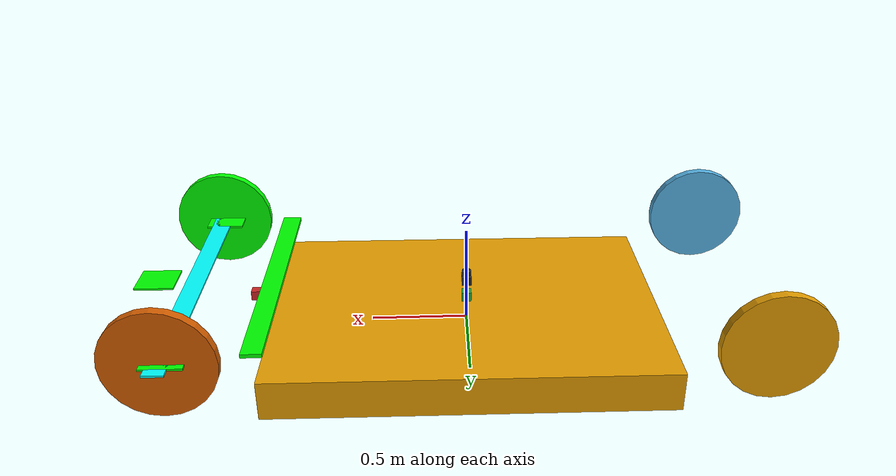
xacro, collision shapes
<?xml version="1.0"?>
<robot name="car" xmlns:xacro="http://www.ros.org/wiki/xacro">

    <!-- Physical Constant Macros -->
    <xacro:property name="M_PI" value="3.1415926535897931" />

    <!-- Dimension Macros -->
    <xacro:property name="carLength" value="2" />
    <xacro:property name="carWidth" value="1.5" />
    <xacro:property name="carHeight" value="0.2" />
    <xacro:property name="wheelRadius" value="0.27" />
    <xacro:property name="wheelWidth" value="0.05" />

    <!-- Physical Material Macros -->
    <material name="Red">
    	<color rgba="1.0 0 0 1.0"/>
    </material>
    <material name="Green">
    	<color rgba="0 1.0 0 1.0"/>
    </material>
    <material name="Blue">
    	<color rgba="0 0 1.0 0.5"/>
    </material>
    <material name="Black">
    	<color rgba="0 0 0 1.0"/>
    </material>
    <material name="Aqua">
    	<color rgba="0 255 255 1.0"/>
    </material>

    <!-- Main body -->
    <link name="base_link">
        <visual>
          <origin xyz="0 0 0" rpy="0 0 ${M_PI/2}"/>
          <geometry>
             <mesh filename="package://car/meshes/hybrid_body.obj" scale="0.01 0.01 0.01"/>
          </geometry>
        </visual>
        <collision>
            <origin xyz="0 0 0" rpy="0 0 0" />
            <geometry>
                <box size="${carLength} ${carWidth} ${carHeight}" />
            </geometry>
        </collision>
    </link>

    <!-- Front link of Ackermann -->
    <!-- Joins to the Car body -->
    <joint name="front_joint" type="fixed">
    	<parent link="base_link"/>
    	<child link="front_link"/>
    	<origin xyz="${carLength*0.7} 0 0.25" rpy="0 0 0"/>
    </joint>
    <link name="front_link">
        <inertial>
            <mass value="0.01" />
            <origin xyz="0 0 0" />
            <inertia  ixx="0.01" ixy="0.0"  ixz="0.0"  iyy="0.01"  iyz="0.0"  izz="0.01" />
        </inertial>
        <visual>
            <geometry>
                <box size="${carLength*0.05} ${carWidth*1.2} ${carHeight*0.05}" />
            </geometry>
            <material name="Aqua"/>
        </visual>
        <collision>
            <geometry>
                <box size="${carLength*0.05} ${carWidth*1.2} ${carHeight*0.05}" />
            </geometry>
        </collision>
    </link>
    <gazebo reference="front_link">
        <material>Gazebo/Green</material>
    </gazebo>

    <!-- a link aligned with the steer direction -->
    <joint name="steer_joint" type="revolute" >
        <limit lower="-0.5" upper="0.5" effort="100" velocity="10" />
        <axis xyz="0 0 1" />
        <parent link="front_link" />
        <child link="steer_link" />
        <origin xyz="0.0 0.0 0.0" rpy="0 0 0" />
    </joint>
    <link name="steer_link">
        <inertial>
            <mass value="0.01" />
            <origin xyz="0 0 0" />
            <inertia  ixx="0.01" ixy="0.0"  ixz="0.0"  iyy="0.01"  iyz="0.0"  izz="0.01" />
        </inertial>
        <visual>
            <origin xyz="-0.2 0 0" />
            <geometry>
                <box size="${carLength*0.1} ${carWidth*0.133} ${carHeight*0.05}" />
            </geometry>
            <material name="Green"/>
        </visual>
        <collision>
            <origin xyz="0.2 0 0" />
            <geometry>
                <box size="${carLength*0.1} ${carWidth*0.133} ${carHeight*0.05}" />
            </geometry>
        </collision>
    </link>
    <gazebo reference="steer_link">
        <material>Gazebo/Green</material>
    </gazebo>

    <!-- the left Ackermann bar -->
    <joint name="front_left_bar_joint" type="revolute" >
        <limit lower="-0.5" upper="0.5" effort="100" velocity="10" />
        <axis xyz="0 0 1" />
        <parent link="front_link" />
        <child link="front_left_bar_link" />
        <origin xyz="0.0 ${carWidth*0.5} 0.0" rpy="0 0 0" />
    </joint>
    <link name="front_left_bar_link">
        <inertial>
            <mass value="0.01" />
            <origin xyz="0 0 0" />
            <inertia  ixx="0.01" ixy="0.0"  ixz="0.0"  iyy="0.01"  iyz="0.0"  izz="0.01" />
        </inertial>
        <visual>
            <origin xyz="-0.02 0 0" />
            <geometry>
                <box size="${carLength*0.1} ${carWidth*0.133} ${carHeight*0.05}" />
            </geometry>
            <material name="Green"/>
        </visual>
        <collision>
            <origin xyz="-0.02 0 0" />
            <geometry>
                <box size="${carLength*0.1} ${carWidth*0.133} ${carHeight*0.05}" />
            </geometry>
        </collision>
    </link>
    <gazebo reference="front_left_bar_link">
        <material>Gazebo/Green</material>
    </gazebo>

    <!-- the right Ackermann bar -->
    <joint name="front_right_bar_joint" type="revolute" >
        <limit lower="-0.5" upper="0.5" effort="100" velocity="10" />
        <axis xyz="0 0 1" />
        <parent link="front_link" />
        <child link="front_right_bar_link" />
        <origin xyz="0.0 ${carWidth*-0.5} 0.0" rpy="0 0 0" />
    </joint>
    <link name="front_right_bar_link">
        <inertial>
            <mass value="0.01" />
            <origin xyz="0 0 0" />
            <inertia  ixx="0.01" ixy="0.0"  ixz="0.0"  iyy="0.01"  iyz="0.0"  izz="0.01" />
        </inertial>
        <visual>
            <origin xyz="-0.02 0 0" />
            <geometry>
                <box size="${carLength*0.1} ${carWidth*0.133} ${carHeight*0.05}" />
            </geometry>
            <material name="Green"/>
        </visual>
        <collision>
            <origin xyz="-0.02 0 0" />
            <geometry>
                <box size="${carLength*0.1} ${carWidth*0.133} ${carHeight*0.05}" />
            </geometry>
        </collision>
    </link>
    <gazebo reference="front_right_bar_link">
        <material>Gazebo/Green</material>
    </gazebo>

	<!-- the front left wheel -->
    <joint name="front_left_wheel_joint" type="continuous" >
        <axis xyz="0 1 0" />
        <parent link="front_left_bar_link" />
        <child link="front_left_wheel_link" />
        <origin xyz="0 0.04 0" rpy="0 0 0" />
    </joint>
    <link name="front_left_wheel_link">
        <inertial>
            <mass value="0.01" />
            <origin xyz="0 0 0" />
            <inertia  ixx="0.01" ixy="0.0"  ixz="0.0"  iyy="0.01"  iyz="0.0"  izz="0.01" />
        </inertial>
        <visual>
            <origin xyz="0 0 0" rpy="0 0 ${M_PI/2}" />
            <geometry>
		     <mesh filename="package://car/meshes/wheel.obj" scale="0.01 0.01 0.01"/>
            </geometry>
        </visual>
        <collision>
            <origin xyz="0 0 0" rpy="${M_PI/2} 0 0" />
            <geometry>
                <cylinder radius="${wheelRadius}" length="${wheelWidth}" />
            </geometry>
        </collision>
    </link>

	<!-- the front right wheel -->
    <joint name="front_right_wheel_joint" type="continuous" >
        <axis xyz="0 1 0" />
        <parent link="front_right_bar_link" />
        <child link="front_right_wheel_link" />
        <origin xyz="0 -0.04 0" rpy="0 0 0" />
    </joint>
    <link name="front_right_wheel_link">
        <inertial>
            <mass value="0.01" />
            <origin xyz="0 0 0" />
            <inertia  ixx="0.01" ixy="0.0"  ixz="0.0"  iyy="0.01"  iyz="0.0"  izz="0.01" />
        </inertial>
        <visual>
            <origin xyz="0 0 0" rpy="0 0 ${M_PI/2}" />
	    <geometry>
		     <mesh filename="package://car/meshes/wheel.obj" scale="0.01 0.01 0.01"/>
	    </geometry>
            <material name="Green"/>
        </visual>
        <collision>
            <origin xyz="0 0 0" rpy="${M_PI/2} 0 0" />
            <geometry>
                <cylinder radius="${wheelRadius}" length="${wheelWidth}" />
            </geometry>
        </collision>
    </link>
    <gazebo reference="front_right_wheel_link">
        <turnGravityOff>false</turnGravityOff>
    </gazebo>

	<!-- the Ackerman bar -->
    <joint name="ackermann_joint" type="revolute" >
        <limit lower="-0.5" upper="0.5" effort="100" velocity="10" />
        <axis xyz="0 0 1" />
        <parent link="steer_link" />
        <child link="ackermann_bar_link" />
        <origin xyz="-0.4 0 0" rpy="0 0 0" />
    </joint>
    <link name="ackermann_bar_link">
        <inertial>
            <mass value="0.01" />
            <origin xyz="0 0 0" />
            <inertia  ixx="0.01" ixy="0.0"  ixz="0.0"  iyy="0.01"  iyz="0.0"  izz="0.01" />
        </inertial>
        <visual>
            <geometry>
                <box size="${carLength*0.05} ${carWidth} ${carHeight*0.1}" />
            </geometry>
            <material name="Green"/>
        </visual>
        <collision>
            <geometry>
                <box size="${carLength*0.05} ${carWidth} ${carHeight*0.1}" />
            </geometry>
        </collision>
    </link>
    <gazebo reference="front_link">
        <material>Gazebo/Green</material>
    </gazebo>
    <gazebo reference="ackermann_bar_link">
        <material>Gazebo/Blue</material>
    </gazebo>

	<!-- the back left wheel -->
    <joint name="back_left_wheel_joint" type="continuous" >
        <axis xyz="0 1 0" />
        <parent link="base_link" />
        <child link="back_left_wheel_link" />
        <origin xyz="-1.4 ${carWidth*0.5} 0.25" rpy="0 0 0" />
    </joint>
    <link name="back_left_wheel_link">
        <inertial>
            <mass value="0.01" />
            <origin xyz="0 0 0" />
            <inertia  ixx="0.01" ixy="0.0"  ixz="0.0"  iyy="0.01"  iyz="0.0"  izz="0.01" />
        </inertial>
        <visual>
            <origin xyz="0 0 0" rpy="0 0 ${M_PI/2}" />
            <geometry>
		     <mesh filename="package://car/meshes/wheel.obj" scale="0.01 0.01 0.01"/>
            </geometry>
        </visual>
        <collision>
            <origin xyz="0 0 0" rpy="${M_PI/2} 0 0" />
            <geometry>
                <cylinder radius="${wheelRadius}" length="${wheelWidth}" />
            </geometry>
        </collision>
    </link>

	<!-- the back right wheel -->
    <joint name="back_right_wheel_joint" type="continuous" >
        <axis xyz="0 1 0" />
        <parent link="base_link" />
        <child link="back_right_wheel_link" />
        <origin xyz="-1.4 ${carWidth*-0.5} 0.25" rpy="0 0 0" />
    </joint>
    <link name="back_right_wheel_link">
        <inertial>
            <mass value="0.01" />
            <origin xyz="0 0 0" />
            <inertia  ixx="0.01" ixy="0.0"  ixz="0.0"  iyy="0.01"  iyz="0.0"  izz="0.01" />
        </inertial>
        <visual>
            <origin xyz="0 0 0" rpy="0 0 ${M_PI/2}" />
            <geometry>
		     <mesh filename="package://car/meshes/wheel.obj" scale="0.01 0.01 0.01"/>
            </geometry>
        </visual>
        <collision>
            <origin xyz="0 0 0" rpy="${M_PI/2} 0 0" />
            <geometry>
                <cylinder radius="${wheelRadius}" length="${wheelWidth}" />
            </geometry>
        </collision>
    </link>

        <joint name="laser_base_mount_joint" type="fixed">
            <origin xyz="0 0 ${carHeight}" rpy="0 0 0" />
            <parent link="base_link"/>
            <child link="laser_base_link"/>
        </joint>

        <link name="laser_base_link" type="fixed">
            <inertial>
                <mass value="0.1"/>
                <origin xyz="0 0 ${carHeight}"/>
                <inertia ixx="0.1" ixy="0" ixz="0" iyy="0.1" iyz="0" izz="0.1"/>
            </inertial>

            <visual>
                <origin rpy="0 0 0" xyz="0 0 0.025"/>
                <geometry>
                    <box size="0.05 0.05 0.05"/>
                </geometry>
            </visual>

            <collision>
                <origin rpy="0 0 0" xyz="0 0 0.025"/>
                <geometry>
                    <box size="0.05 0.05 0.05"/>
                </geometry>
            </collision>
        </link>

        <joint name="base_scan_joint" type="fixed" >
            <origin xyz="0 0 0.05" rpy="0 0 0" />
            <parent link="laser_base_link" />
            <child link="base_scan_link"/>
        </joint>

        <link name="base_scan_link" type="laser">
            <inertial>
                <mass value="0.1"/>
                <origin xyz="0 0 0.0"/>
                <inertia ixx="0.1" ixy="0" ixz="0" iyy="0.1" iyz="0" izz="0.1"/>
            </inertial>

            <visual>
                <origin rpy="0 0 0" xyz="0 0 0.014"/>
                <geometry>
                    <cylinder radius="0.0229" length="0.028"/>
                </geometry>
            </visual>

            <collision>
                <origin rpy="0 0 0" xyz="0 0 0.014"/>
                <geometry>
                    <cylinder radius="0.0229" length="0.028"/>
                </geometry>
            </collision>
        </link>

	  <!-- Camera -->
	  <joint name="camera_joint" type="fixed">
	    <axis xyz="0 0 0" />
	    <origin xyz="1.1 0 ${carHeight*0.8}" rpy="0 0 0"/>
	    <parent link="base_link"/>
	    <child link="camera_link"/>
	  </joint>

	  <link name="camera_link">
	    <collision>
	      <origin xyz="0 0 0" rpy="0 0 0"/>
	      <geometry>
		<box size="0.05 0.05 0.05"/>
	      </geometry>
	    </collision>

	    <visual>
	      <origin xyz="0 0 0" rpy="0 0 0"/>
	      <geometry>
		<box size="0.05 0.05 0.05"/>
	      </geometry>
	      <material name="red"/>
	    </visual>

	    <inertial>
	      <mass value="1e-5" />
	      <origin xyz="0 0 0" rpy="0 0 0"/>
	      <inertia ixx="1e-6" ixy="0" ixz="0" iyy="1e-6" iyz="0" izz="1e-6" />
	    </inertial>
	  </link>

	  <!-- GPS -->
	  <joint name="gps_joint" type="fixed">
	    <axis xyz="0 0 0" />
	    <origin xyz="0 0 ${carHeight*0.65}" rpy="0 0 0"/>
	    <parent link="base_link"/>
	    <child link="gps_link"/>
	  </joint>

	  <link name="gps_link">
	    <collision>
	      <origin xyz="0 0 0" rpy="0 0 0"/>
	      <geometry>
		<box size="0.05 0.05 0.05"/>
	      </geometry>
	    </collision>

	    <visual>
	      <origin xyz="0 0 0" rpy="0 0 0"/>
	      <geometry>
		<box size="0.05 0.05 0.05"/>
	      </geometry>
	      <material name="green"/>
	    </visual>

	    <inertial>
	      <mass value="1e-5" />
	      <origin xyz="0 0 0" rpy="0 0 0"/>
	      <inertia ixx="1e-6" ixy="0" ixz="0" iyy="1e-6" iyz="0" izz="1e-6" />
	    </inertial>
	  </link>

        <gazebo reference="laser_base_link">
            <material>Gazebo/Black</material>
        </gazebo>

        <gazebo reference="base_scan_link">
            <material>Gazebo/Black</material>
        </gazebo>

	<!-- GPS. It's a model type, so it needs to attach to a link, not a joint. See bodyName for where this gets attached -->
	<gazebo>
		<plugin name="gps_plugin" filename="libhector_gazebo_ros_gps.so">
			<alwaysOn>1</alwaysOn>
			<updateRate>10.0</updateRate>
			<bodyName>gps_link</bodyName>
			<topicName>gps/fix</topicName>
			<velocityTopicName>gps/fix/velocity</velocityTopicName>
			<drift>5.0 5.0 5.0</drift>
			<gaussianNoise>0.1 0.1 0.1</gaussianNoise>
			<velocityDrift>0 0 0</velocityDrift>
			<velocityGaussianNoise>0.1 0.1 0.1</velocityGaussianNoise>
			<frameId>odom</frameId>
		</plugin>
	</gazebo>

	<gazebo>
		<plugin name="imu_plugin" filename="libhector_gazebo_ros_imu.so">
			<alwaysOn>1</alwaysOn>
			<updateRate>10.0</updateRate>
			<bodyName>base_link</bodyName>
			<topicName>imu/data</topicName>
		</plugin>
	</gazebo>

	  <!-- camera -->
 <gazebo reference="camera_link">
    <sensor type="multicamera" name="stereo_camera">
      <update_rate>30.0</update_rate>
      <camera name="left">
        <horizontal_fov>1.3962634</horizontal_fov>
        <image>
          <width>1280</width>
          <height>720</height>
          <format>R8G8B8</format>
        </image>
        <clip>
          <near>0.02</near>
          <far>300</far>
        </clip>
        <noise>
          <type>gaussian</type>
          <mean>0.0</mean>
          <stddev>0.007</stddev>
        </noise>
      </camera>
      <camera name="right">
        <pose>0 -0.06 0 0 0 0</pose>
        <horizontal_fov>1.3962634</horizontal_fov>
        <image>
          <width>1280</width>
          <height>720</height>
          <format>R8G8B8</format>
        </image>
        <clip>
          <near>0.02</near>
          <far>300</far>
        </clip>
        <noise>
          <type>gaussian</type>
          <mean>0.0</mean>
          <stddev>0.007</stddev>
        </noise>
      </camera>
      <plugin name="stereo_camera_controller" filename="libgazebo_ros_multicamera.so">
        <alwaysOn>true</alwaysOn>
        <updateRate>0.0</updateRate>
        <cameraName>camera</cameraName>
        <imageTopicName>image_raw</imageTopicName>
        <cameraInfoTopicName>camera_info</cameraInfoTopicName>
        <frameName>left_camera_optical_frame</frameName>
        <hackBaseline>0.06</hackBaseline>
        <distortionK1>0.0</distortionK1>
        <distortionK2>0.0</distortionK2>
        <distortionK3>0.0</distortionK3>
        <distortionT1>0.0</distortionT1>
        <distortionT2>0.0</distortionT2>
      </plugin>
    </sensor>
  </gazebo>

<!--Must be in same namespace as the spawner in car_control.launch-->
<gazebo>
  <plugin name="gazebo_ros_control" filename="libgazebo_ros_control.so">
    <robotNamespace>/car</robotNamespace>
  </plugin>
</gazebo>

<transmission name="LeftTransmission" type="SimpleTransmission">
	<type>transmission_interface/SimpleTransmission</type>
	<joint name="front_left_wheel_joint">
		<hardwareInterface>hardware_interface/EffortJointInterface</hardwareInterface>
	</joint>
	<actuator name="LeftMotor">
		<hardwareInterface>hardware_interface/EffortJointInterface</hardwareInterface>
		<mechanicalReduction>1</mechanicalReduction>
	</actuator>
</transmission>
<transmission name="RightTransmission" type="SimpleTransmission">
	<type>transmission_interface/SimpleTransmission</type>
	<joint name="front_right_wheel_joint">
		<hardwareInterface>hardware_interface/EffortJointInterface</hardwareInterface>
	</joint>
	<actuator name="RightMotor">
		<hardwareInterface>hardware_interface/EffortJointInterface</hardwareInterface>
		<mechanicalReduction>1</mechanicalReduction>
	</actuator>
</transmission>
</robot>
